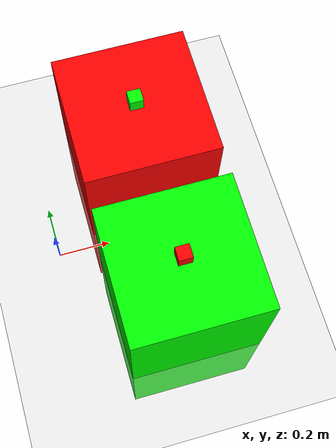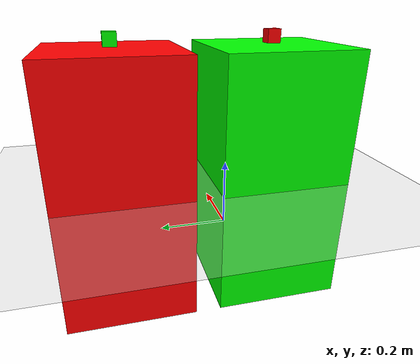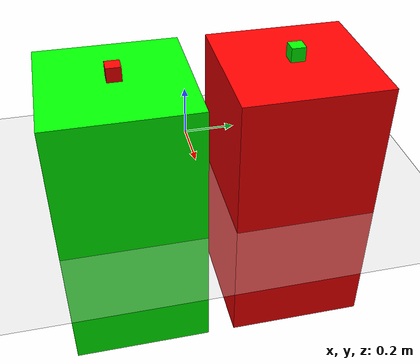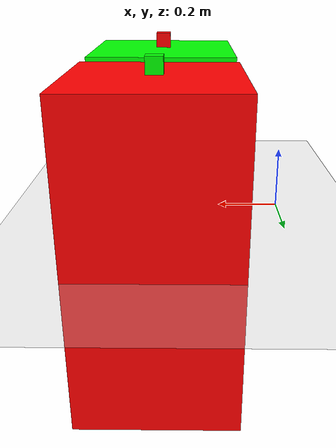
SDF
<?xml version="1.0" ?>

<sdf version="1.6">
  <world name="empty">
    <physics name="1ms" type="ignored">
      <max_step_size>0.001</max_step_size>
      <real_time_factor>1.0</real_time_factor>
    </physics>
    <plugin
      filename="ignition-gazebo-physics-system"
      name="gz::sim::systems::Physics">
    </plugin>
    <plugin
      filename="ignition-gazebo-user-commands-system"
      name="gz::sim::systems::UserCommands">
    </plugin>
    <plugin
      filename="ignition-gazebo-scene-broadcaster-system"
      name="gz::sim::systems::SceneBroadcaster">
    </plugin>
    <plugin
      filename="ignition-gazebo-contact-system"
      name="gz::sim::systems::Contact">
    </plugin>

    <light type="directional" name="sun">
      <cast_shadows>false</cast_shadows>
      <pose>0 0 10 0 0 0</pose>
      <diffuse>0.8 0.8 0.8 1</diffuse>
      <specular>0.2 0.2 0.2 1</specular>
      <attenuation>
        <range>1000</range>
        <constant>0.9</constant>
        <linear>0.01</linear>
        <quadratic>0.001</quadratic>
      </attenuation>
      <direction>-0.5 0.1 -0.9</direction>
    </light>

    <model name="ground_plane">
      <static>true</static>
      <link name="link">
        <collision name="collision">
          <geometry>
            <plane>
              <normal>0 0 1</normal>
              <size>100 100</size>
            </plane>
          </geometry>
        </collision>
        <visual name="visual">
          <geometry>
            <plane>
              <normal>0 0 1</normal>
              <size>100 100</size>
            </plane>
          </geometry>
          <material>
            <ambient>0.8 0.8 0.8 1</ambient>
            <diffuse>0.8 0.8 0.8 1</diffuse>
            <specular>0.8 0.8 0.8 1</specular>
          </material>
        </visual>
      </link>
    </model>

    <model name="table1">
      <pose>0.4 0.3 0 0 0 0</pose>
      <static>true</static>
      <link name="link">
        <collision name="collision">
          <geometry>
            <box>
              <normal>0 0 1</normal>
              <size>0.5 0.5 1</size>
            </box>
          </geometry>
        </collision>
        <visual name="visual">
          <geometry>
            <box>
              <normal>0 0 1</normal>
              <size>0.5 0.5 1</size>
            </box>
          </geometry>
          <material>
            <ambient>1 0 0 1</ambient>
            <diffuse>1 0 0 1</diffuse>
            <specular>1 0 0 1</specular>
          </material>
        </visual>
      </link>
    </model>

    <model name="table2">
      <pose>0.4 -0.3 0 0 0 0</pose>
      <static>true</static>
      <link name="link">
        <collision name="collision">
          <geometry>
            <box>
              <normal>0 0 1</normal>
              <size>0.5 0.5 1</size>
            </box>
          </geometry>
        </collision>
        <visual name="visual">
          <geometry>
            <box>
              <normal>0 0 1</normal>
              <size>0.5 0.5 1</size>
            </box>
          </geometry>
          <material>
            <ambient>0 1 0 1</ambient>
            <diffuse>0 1 0 1</diffuse>
            <specular>0 1 0 1</specular>
          </material>
        </visual>
      </link>
    </model>

    <model name="block1">
      <pose>0.4 0.3 0.53 0 0 0</pose>
      <static>false</static>
      <link name="link">
      <inertial>
          <inertia>
            <ixx>1e-3</ixx>
            <ixy>0</ixy>
            <ixz>0</ixz>
            <iyy>1e-3</iyy>
            <iyz>0</iyz>
            <izz>1e-3</izz>
          </inertia>
          <mass>0.1</mass>
        </inertial>
        <collision name="collision">
          <geometry>
            <box>
              <normal>0 0 1</normal>
              <size>0.05 0.05 0.05</size>
            </box>
          </geometry>
        </collision>
        <visual name="visual">
          <geometry>
            <box>
              <normal>0 0 1</normal>
              <size>0.05 0.05 0.05</size>
            </box>
          </geometry>
          <material>
            <ambient>0 1 0 1</ambient>
            <diffuse>0 1 0 1</diffuse>
            <specular>0 1 0 1</specular>
          </material>
        </visual>
      </link>
    </model>

    <model name="block2">
      <pose>0.4 -0.3 0.53 0 0 0</pose>
      <static>false</static>
      <link name="link">
      <inertial>
          <inertia>
            <ixx>1e-3</ixx>
            <ixy>0</ixy>
            <ixz>0</ixz>
            <iyy>1e-3</iyy>
            <iyz>0</iyz>
            <izz>1e-3</izz>
          </inertia>
          <mass>0.1</mass>
        </inertial>
        <collision name="collision">
          <geometry>
            <box>
              <normal>0 0 1</normal>
              <size>0.05 0.05 0.05</size>
            </box>
          </geometry>
        </collision>
        <visual name="visual">
          <geometry>
            <box>
              <normal>0 0 1</normal>
              <size>0.05 0.05 0.05</size>
            </box>
          </geometry>
          <material>
            <ambient>1 0 0 1</ambient>
            <diffuse>1 0 0 1</diffuse>
            <specular>1 0 0 1</specular>
          </material>
        </visual>
      </link>
    </model>
  </world>
</sdf>
